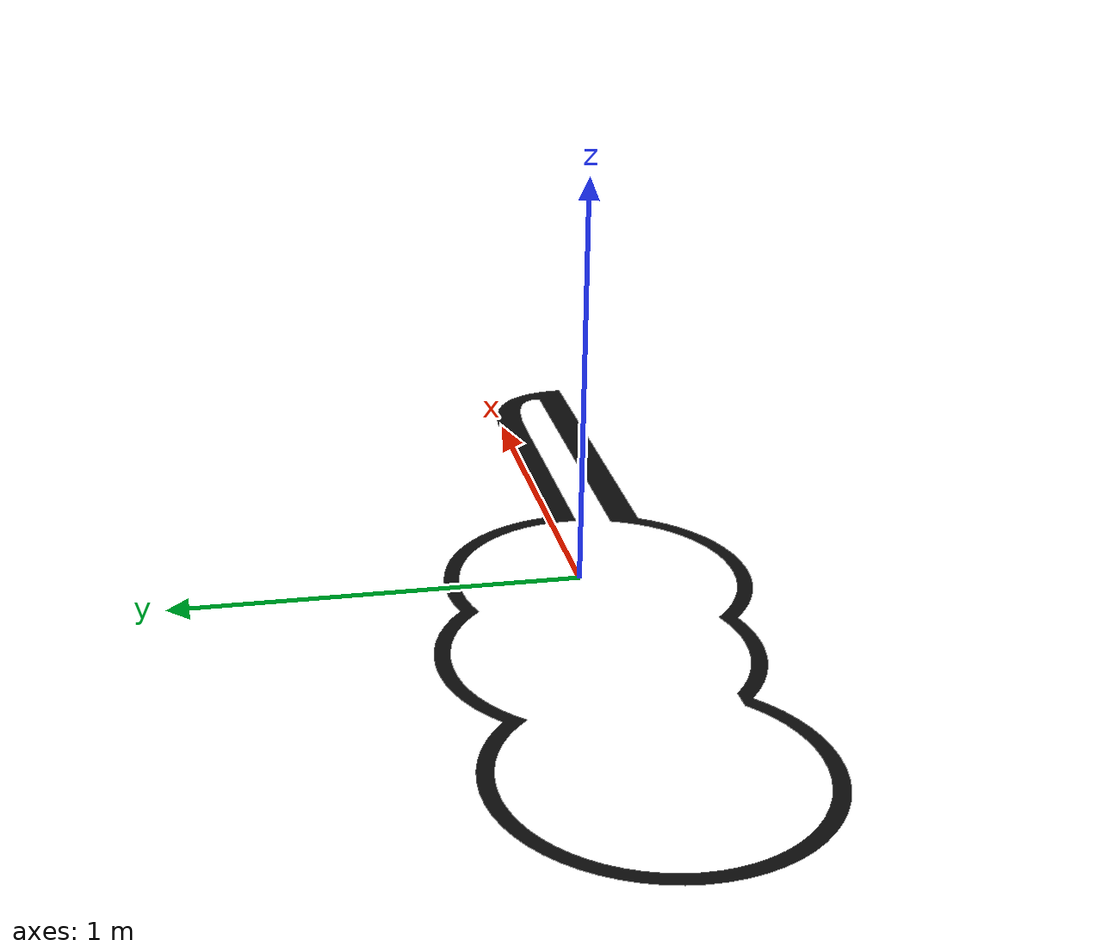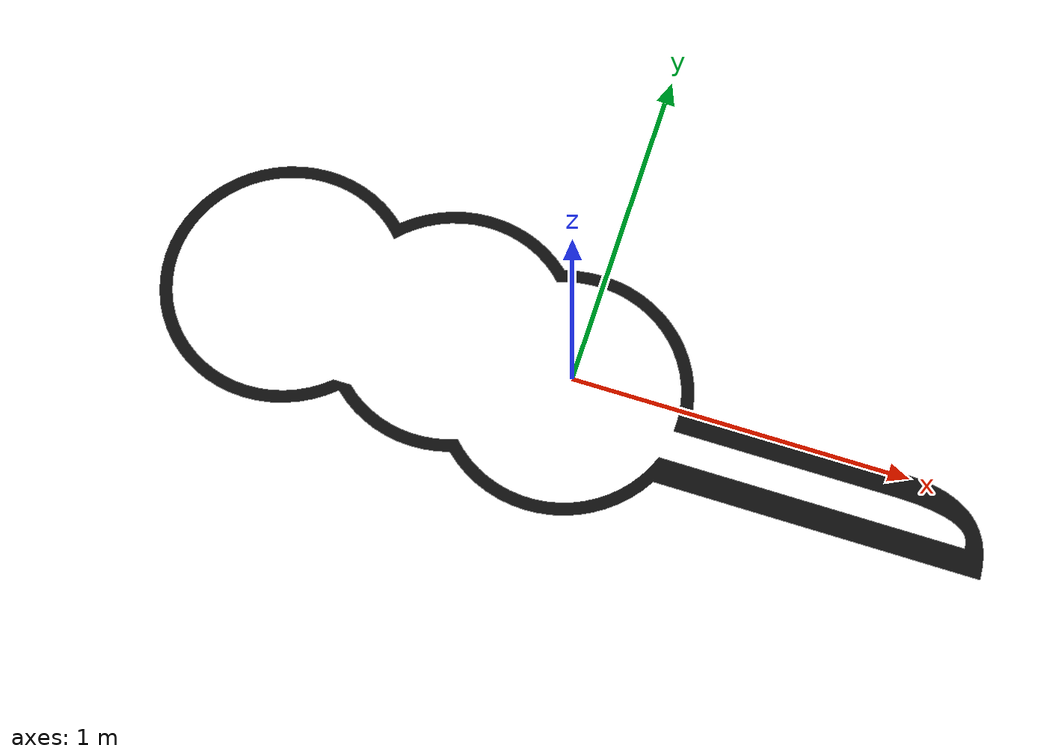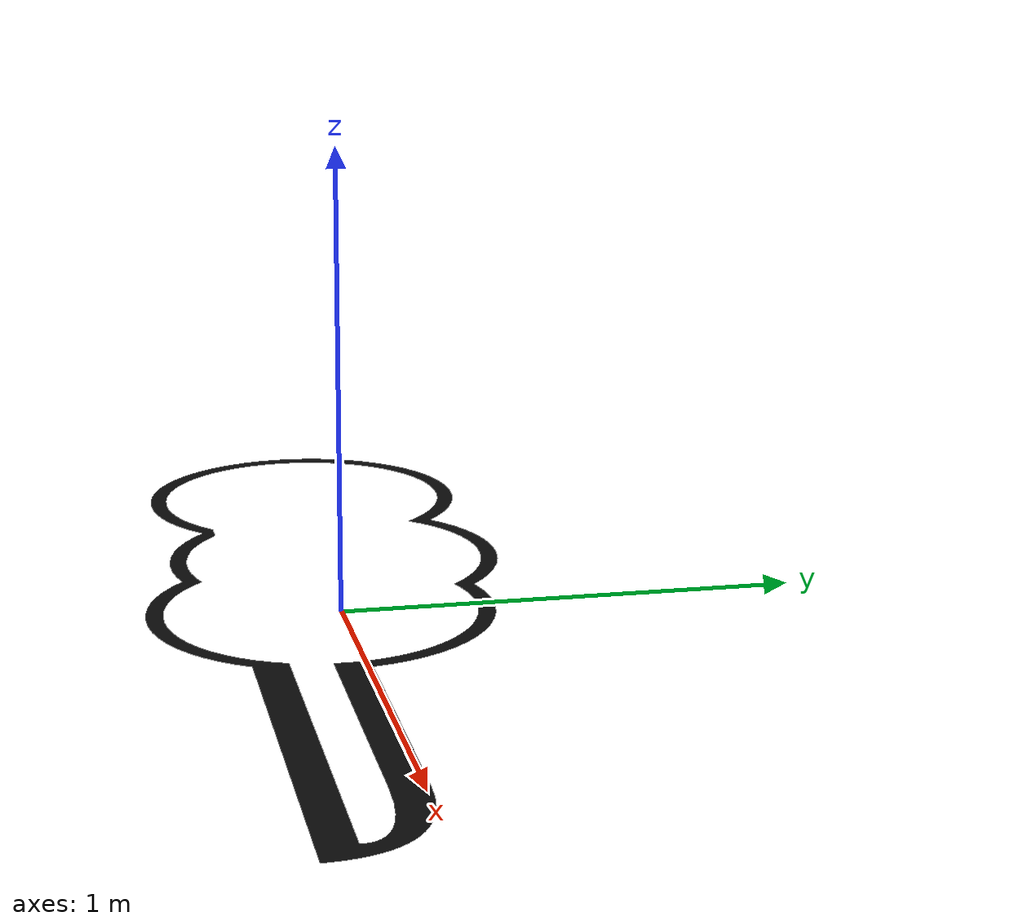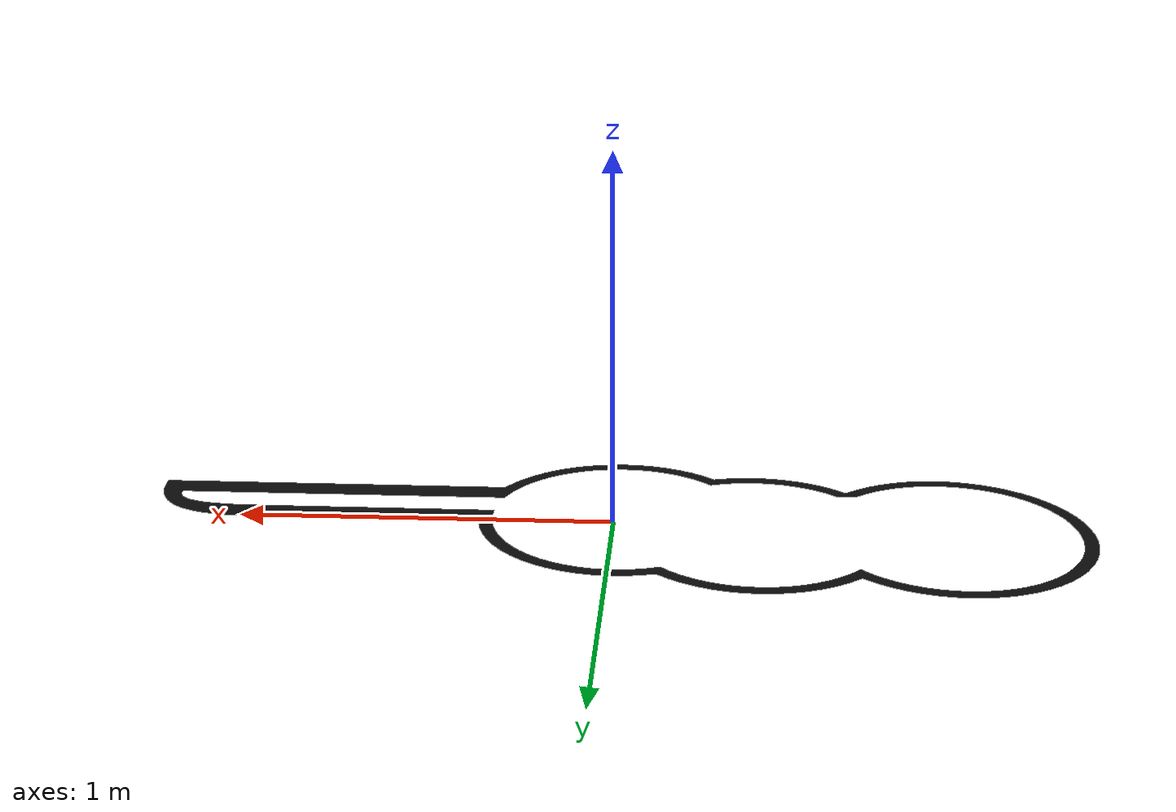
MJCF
<mujoco model="MidTrack">
  <asset>
    <mesh name="MidTrack" file="../../objects/tracks/MidTrack.obj" inertia="shell"
          scale="7.5 7.5 7.5"/>
  </asset>
  <worldbody>
    <geom name="line_MidTrack" type="mesh" mesh="MidTrack" quat="1 0 0 0"
          pos="-0.5569 -0.1529 0.002"
          contype="0" conaffinity="0" group="2" rgba="0.05 0.05 0.05 1"/>
  </worldbody>
</mujoco>
